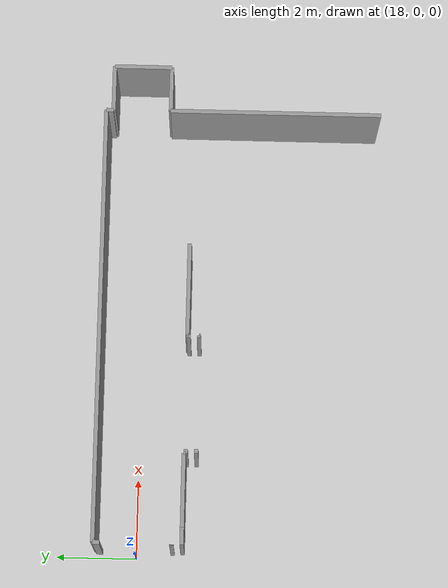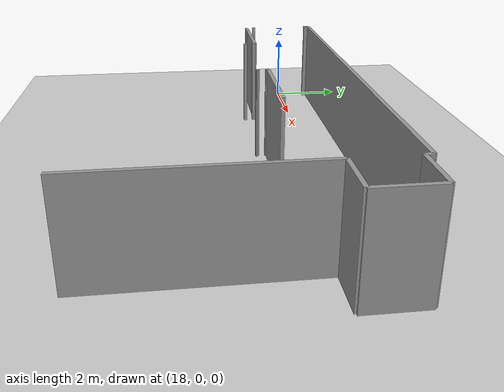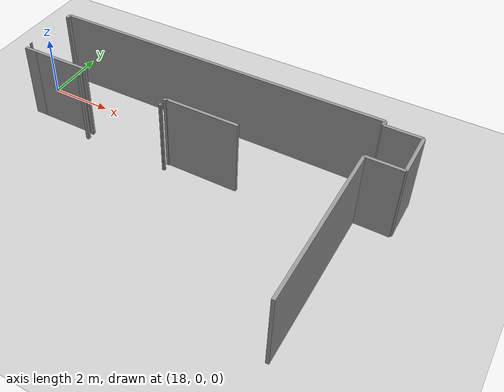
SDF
<sdf version="1.6">
 <world name="default">
  <model name="ground_plane">
   <static>1</static>
   <link name="link">
    <collision name="collision">
     <geometry><plane><normal>0 0 1</normal><size>100 100</size></plane></geometry>
     <surface><friction><ode><mu>100</mu><mu2>50</mu2></ode></friction></surface>
    </collision>
    <visual name="visual">
     <cast_shadows>0</cast_shadows>
     <geometry><plane><normal>0 0 1</normal><size>100 100</size></plane></geometry>
     <material>
      <script><uri>file://media/materials/scripts/gazebo.material</uri><name>Gazebo/Grey</name></script>
     </material>
    </visual>
   </link>
  </model>
  <model name="0510032259_A_40_1_101">
   <static>1</static>
   <link name="Wall_320">
    <collision name="Wall_320_Collision">
     <geometry><box><size>0.422939614539 0.1 2.5</size></box></geometry>
     <pose>0.21146980727 0 1.25 0 0 0</pose>
    </collision>
    <visual name="Wall_320_Visual">
     <pose>0.21146980727 0 1.25 0 0 0</pose>
     <geometry><box><size>0.422939614539 0.1 2.5</size></box></geometry>
     <material>
      <script><uri>file://media/materials/scripts/gazebo.material</uri><name>Gazebo/Grey</name></script>
      <ambient>1 1 1 1</ambient>
     </material>
    </visual>
    <pose>48.7095831586 -22.2320895428 0 0 0 3.14159265359</pose>
   </link>
   <link name="Wall_322">
    <collision name="Wall_322_Collision">
     <geometry><box><size>0.0219791388751 0.1 2.5</size></box></geometry>
     <pose>0.0109895694376 0 1.25 0 0 0</pose>
    </collision>
    <visual name="Wall_322_Visual">
     <pose>0.0109895694376 0 1.25 0 0 0</pose>
     <geometry><box><size>0.0219791388751 0.1 2.5</size></box></geometry>
     <material>
      <script><uri>file://media/materials/scripts/gazebo.material</uri><name>Gazebo/Grey</name></script>
      <ambient>1 1 1 1</ambient>
     </material>
    </visual>
    <pose>48.2866435441 -21.9848559922 0 0 0 3.14159265359</pose>
   </link>
   <link name="Wall_326">
    <collision name="Wall_326_Collision">
     <geometry><box><size>0.164780018041 0.1 2.5</size></box></geometry>
     <pose>0.0823900090203 0 1.25 0 0 0</pose>
    </collision>
    <visual name="Wall_326_Visual">
     <pose>0.0823900090203 0 1.25 0 0 0</pose>
     <geometry><box><size>0.164780018041 0.1 2.5</size></box></geometry>
     <material>
      <script><uri>file://media/materials/scripts/gazebo.material</uri><name>Gazebo/Grey</name></script>
      <ambient>1 1 1 1</ambient>
     </material>
    </visual>
    <pose>48.30315966 -20.2272871644 0 0 0 1.57079632679</pose>
   </link>
   <link name="Wall_327">
    <collision name="Wall_327_Collision">
     <geometry><box><size>10.8864072366 0.1 2.5</size></box></geometry>
     <pose>5.4432036183 0 1.25 0 0 0</pose>
    </collision>
    <visual name="Wall_327_Visual">
     <pose>5.4432036183 0 1.25 0 0 0</pose>
     <geometry><box><size>10.8864072366 0.1 2.5</size></box></geometry>
     <material>
      <script><uri>file://media/materials/scripts/gazebo.material</uri><name>Gazebo/Grey</name></script>
      <ambient>1 1 1 1</ambient>
     </material>
    </visual>
    <pose>48.30315966 -20.0625071464 0 0 0 0.0</pose>
   </link>
   <link name="Wall_328">
    <collision name="Wall_328_Collision">
     <geometry><box><size>0.181296133958 0.1 2.5</size></box></geometry>
     <pose>0.0906480669792 0 1.25 0 0 0</pose>
    </collision>
    <visual name="Wall_328_Visual">
     <pose>0.0906480669792 0 1.25 0 0 0</pose>
     <geometry><box><size>0.181296133958 0.1 2.5</size></box></geometry>
     <material>
      <script><uri>file://media/materials/scripts/gazebo.material</uri><name>Gazebo/Grey</name></script>
      <ambient>1 1 1 1</ambient>
     </material>
    </visual>
    <pose>59.1895668966 -20.0625071464 0 0 0 -1.57079632679</pose>
   </link>
   <link name="Wall_329">
    <collision name="Wall_329_Collision">
     <geometry><box><size>1.14215293923 0.1 2.5</size></box></geometry>
     <pose>0.571076469617 0 1.25 0 0 0</pose>
    </collision>
    <visual name="Wall_329_Visual">
     <pose>0.571076469617 0 1.25 0 0 0</pose>
     <geometry><box><size>1.14215293923 0.1 2.5</size></box></geometry>
     <material>
      <script><uri>file://media/materials/scripts/gazebo.material</uri><name>Gazebo/Grey</name></script>
      <ambient>1 1 1 1</ambient>
     </material>
    </visual>
    <pose>59.1895668966 -20.2438032804 0 0 0 0.0</pose>
   </link>
   <link name="Wall_330">
    <collision name="Wall_330_Collision">
     <geometry><box><size>1.43906188462 0.1 2.5</size></box></geometry>
     <pose>0.719530942308 0 1.25 0 0 0</pose>
    </collision>
    <visual name="Wall_330_Visual">
     <pose>0.719530942308 0 1.25 0 0 0</pose>
     <geometry><box><size>1.43906188462 0.1 2.5</size></box></geometry>
     <material>
      <script><uri>file://media/materials/scripts/gazebo.material</uri><name>Gazebo/Grey</name></script>
      <ambient>1 1 1 1</ambient>
     </material>
    </visual>
    <pose>60.3317198359 -20.2438032804 0 0 0 -1.57079632679</pose>
   </link>
   <link name="Wall_331">
    <collision name="Wall_331_Collision">
     <geometry><box><size>1.13071870514 0.1 2.5</size></box></geometry>
     <pose>0.565359352568 0 1.25 0 0 0</pose>
    </collision>
    <visual name="Wall_331_Visual">
     <pose>0.565359352568 0 1.25 0 0 0</pose>
     <geometry><box><size>1.13071870514 0.1 2.5</size></box></geometry>
     <material>
      <script><uri>file://media/materials/scripts/gazebo.material</uri><name>Gazebo/Grey</name></script>
      <ambient>1 1 1 1</ambient>
     </material>
    </visual>
    <pose>60.3317198359 -21.682865165 0 0 0 3.14159265359</pose>
   </link>
   <link name="Wall_332">
    <collision name="Wall_332_Collision">
     <geometry><box><size>5.28960374027 0.1 2.5</size></box></geometry>
     <pose>2.64480187013 0 1.25 0 0 0</pose>
    </collision>
    <visual name="Wall_332_Visual">
     <pose>2.64480187013 0 1.25 0 0 0</pose>
     <geometry><box><size>5.28960374027 0.1 2.5</size></box></geometry>
     <material>
      <script><uri>file://media/materials/scripts/gazebo.material</uri><name>Gazebo/Grey</name></script>
      <ambient>1 1 1 1</ambient>
     </material>
    </visual>
    <pose>59.2010011307 -21.682865165 0 0 0 -1.57079632679</pose>
   </link>
   <link name="Wall_337">
    <collision name="Wall_337_Collision">
     <geometry><box><size>2.30183837075 0.1 2.5</size></box></geometry>
     <pose>1.15091918537 0 1.25 0 0 0</pose>
    </collision>
    <visual name="Wall_337_Visual">
     <pose>1.15091918537 0 1.25 0 0 0</pose>
     <geometry><box><size>2.30183837075 0.1 2.5</size></box></geometry>
     <material>
      <script><uri>file://media/materials/scripts/gazebo.material</uri><name>Gazebo/Grey</name></script>
      <ambient>1 1 1 1</ambient>
     </material>
    </visual>
    <pose>55.7838167473 -22.2461917648 0 0 0 3.14159265359</pose>
   </link>
   <link name="Wall_338">
    <collision name="Wall_338_Collision">
     <geometry><box><size>0.0303642438795 0.1 2.5</size></box></geometry>
     <pose>0.0151821219398 0 1.25 0 0 0</pose>
    </collision>
    <visual name="Wall_338_Visual">
     <pose>0.0151821219398 0 1.25 0 0 0</pose>
     <geometry><box><size>0.0303642438795 0.1 2.5</size></box></geometry>
     <material>
      <script><uri>file://media/materials/scripts/gazebo.material</uri><name>Gazebo/Grey</name></script>
      <ambient>1 1 1 1</ambient>
     </material>
    </visual>
    <pose>53.4819783766 -22.2461917648 0 0 0 -1.57079632679</pose>
   </link>
   <link name="Wall_339">
    <collision name="Wall_339_Collision">
     <geometry><box><size>0.078515074132 0.1 2.5</size></box></geometry>
     <pose>0.039257537066 0 1.25 0 0 0</pose>
    </collision>
    <visual name="Wall_339_Visual">
     <pose>0.039257537066 0 1.25 0 0 0</pose>
     <geometry><box><size>0.078515074132 0.1 2.5</size></box></geometry>
     <material>
      <script><uri>file://media/materials/scripts/gazebo.material</uri><name>Gazebo/Grey</name></script>
      <ambient>1 1 1 1</ambient>
     </material>
    </visual>
    <pose>53.4819783766 -22.2765560087 0 0 0 3.14159265359</pose>
   </link>
   <link name="Wall_340">
    <collision name="Wall_340_Collision">
     <geometry><box><size>0.103670389145 0.1 2.5</size></box></geometry>
     <pose>0.0518351945726 0 1.25 0 0 0</pose>
    </collision>
    <visual name="Wall_340_Visual">
     <pose>0.0518351945726 0 1.25 0 0 0</pose>
     <geometry><box><size>0.103670389145 0.1 2.5</size></box></geometry>
     <material>
      <script><uri>file://media/materials/scripts/gazebo.material</uri><name>Gazebo/Grey</name></script>
      <ambient>1 1 1 1</ambient>
     </material>
    </visual>
    <pose>50.6287558283 -22.2765560087 0 0 0 3.14159265359</pose>
   </link>
   <link name="Wall_341">
    <collision name="Wall_341_Collision">
     <geometry><box><size>0.0459910304786 0.1 2.5</size></box></geometry>
     <pose>0.0229955152393 0 1.25 0 0 0</pose>
    </collision>
    <visual name="Wall_341_Visual">
     <pose>0.0229955152393 0 1.25 0 0 0</pose>
     <geometry><box><size>0.0459910304786 0.1 2.5</size></box></geometry>
     <material>
      <script><uri>file://media/materials/scripts/gazebo.material</uri><name>Gazebo/Grey</name></script>
      <ambient>1 1 1 1</ambient>
     </material>
    </visual>
    <pose>50.5250854391 -22.2765560087 0 0 0 1.57079632679</pose>
   </link>
   <link name="Wall_342">
    <collision name="Wall_342_Collision">
     <geometry><box><size>1.81550292062 0.1 2.5</size></box></geometry>
     <pose>0.90775146031 0 1.25 0 0 0</pose>
    </collision>
    <visual name="Wall_342_Visual">
     <pose>0.90775146031 0 1.25 0 0 0</pose>
     <geometry><box><size>1.81550292062 0.1 2.5</size></box></geometry>
     <material>
      <script><uri>file://media/materials/scripts/gazebo.material</uri><name>Gazebo/Grey</name></script>
      <ambient>1 1 1 1</ambient>
     </material>
    </visual>
    <pose>50.5250854391 -22.2305649782 0 0 0 -3.14075290571</pose>
   </link>
   <link name="Wall_352">
    <collision name="Wall_352_Collision">
     <geometry><box><size>0.104432671418 0.1 2.5</size></box></geometry>
     <pose>0.0522163357091 0 1.25 0 0 0</pose>
    </collision>
    <visual name="Wall_352_Visual">
     <pose>0.0522163357091 0 1.25 0 0 0</pose>
     <geometry><box><size>0.104432671418 0.1 2.5</size></box></geometry>
     <material>
      <script><uri>file://media/materials/scripts/gazebo.material</uri><name>Gazebo/Grey</name></script>
      <ambient>1 1 1 1</ambient>
     </material>
    </visual>
    <pose>50.533089403 -22.534207417 0 0 0 0.0</pose>
   </link>
   <link name="Wall_353">
    <collision name="Wall_353_Collision">
     <geometry><box><size>0.0522163357091 0.1 2.5</size></box></geometry>
     <pose>0.0261081678546 0 1.25 0 0 0</pose>
    </collision>
    <visual name="Wall_353_Visual">
     <pose>0.0261081678546 0 1.25 0 0 0</pose>
     <geometry><box><size>0.0522163357091 0.1 2.5</size></box></geometry>
     <material>
      <script><uri>file://media/materials/scripts/gazebo.material</uri><name>Gazebo/Grey</name></script>
      <ambient>1 1 1 1</ambient>
     </material>
    </visual>
    <pose>53.407782902 -22.534207417 0 0 0 0.0</pose>
   </link>
   <link name="Wall_354">
    <collision name="Wall_354_Collision">
     <geometry><box><size>0.0370977372921 0.1 2.5</size></box></geometry>
     <pose>0.0185488686461 0 1.25 0 0 0</pose>
    </collision>
    <visual name="Wall_354_Visual">
     <pose>0.0185488686461 0 1.25 0 0 0</pose>
     <geometry><box><size>0.0370977372921 0.1 2.5</size></box></geometry>
     <material>
      <script><uri>file://media/materials/scripts/gazebo.material</uri><name>Gazebo/Grey</name></script>
      <ambient>1 1 1 1</ambient>
     </material>
    </visual>
    <pose>53.4599992377 -22.534207417 0 0 0 -1.57079632679</pose>
   </link>
   <pose>-30.15 21.0617302537 0 0 0 0</pose>
  </model>
 </world>
</sdf>
